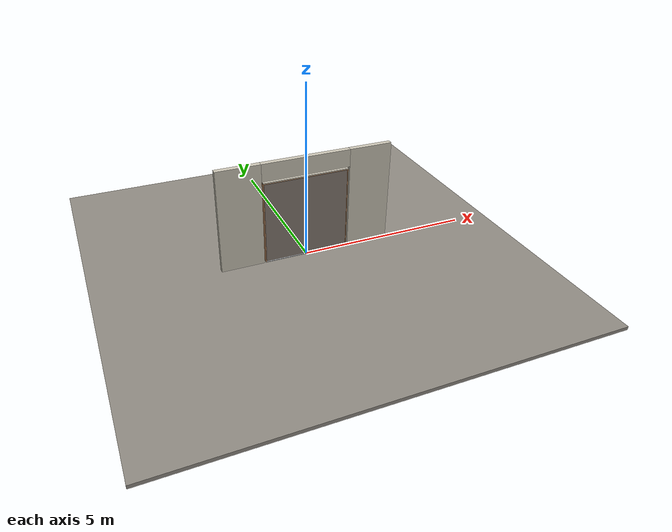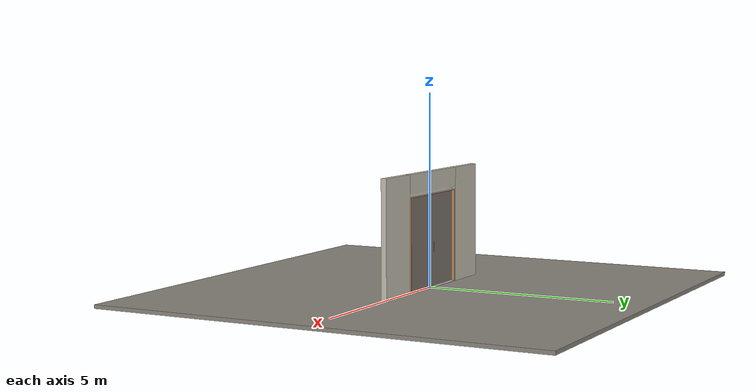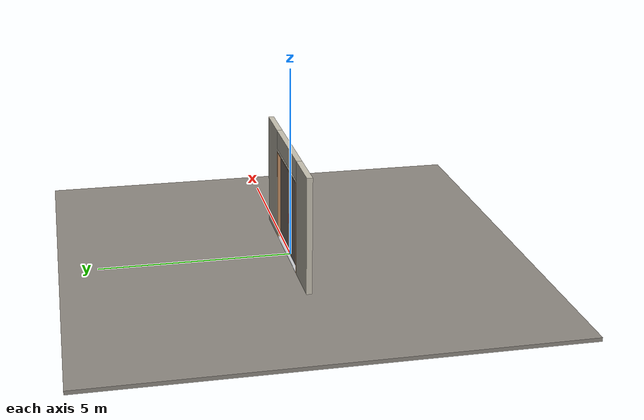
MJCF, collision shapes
<?xml version="1.0" ?>
<mujoco model="db0395_swing_double_minimal">
  <compiler angle="radian" meshdir="../../hardware" texturedir="../../textures" autolimits="true" inertiafromgeom="false"/>
  <option timestep="0.002" integrator="implicitfast" cone="elliptic" impratio="10" noslip_iterations="3">
    <flag multiccd="enable"/>
  </option>
  <size memory="16M"/>
  <default>
    <geom condim="4" solref="0.005 1" solimp="0.95 0.99 0.001"/>
    <joint solreflimit="0.005 1" solimplimit="0.95 0.99 0.001"/>
    <tendon solreflimit="0.005 1"/>
    <equality solref="0.002 1"/>
  </default>
  <visual>
    <headlight ambient="0.4 0.4 0.4" diffuse="0.7 0.7 0.7" specular="0.2 0.2 0.2"/>
    <quality shadowsize="4096"/>
    <map znear="0.01" zfar="60"/>
  </visual>
  <asset>
    <mesh name="pull_2b47e55ff8" file="pull_2b47e55ff8.obj"/>
    <material name="mat_floor" rgba="0.55 0.53 0.5 1" specular="0.2" shininess="0.15" reflectance="0"/>
    <material name="mat_wall" rgba="0.78 0.76 0.7 1" specular="0.2" shininess="0.1" reflectance="0"/>
    <material name="mat_leaf_a" rgba="0.5 0.46 0.425 1" specular="0.2" shininess="0.15" reflectance="0"/>
    <material name="mat_leaf_a_brace" rgba="0.45 0.414 0.383 1" specular="0.2" shininess="0.2" reflectance="0"/>
    <material name="mat_hinge" rgba="0.65 0.66 0.68 1" specular="0.74" shininess="0.5" reflectance="0.36"/>
    <material name="mat_op_black_matte_metal" rgba="0.05 0.05 0.05 1" specular="0.38" shininess="0.3" reflectance="0.12"/>
    <material name="mat_leaf_b" rgba="0.5 0.46 0.425 1" specular="0.2" shininess="0.15" reflectance="0"/>
    <material name="mat_leaf_b_brace" rgba="0.45 0.414 0.383 1" specular="0.2" shininess="0.2" reflectance="0"/>
    <material name="mat_frame" rgba="0.75 0.55 0.38 1" specular="0.2" shininess="0.45" reflectance="0"/>
    <material name="mat_threshold" rgba="0.8 0.81 0.83 1" specular="0.8" shininess="0.6" reflectance="0.4"/>
    <texture name="skybox" type="skybox" builtin="gradient" rgb1="0.6 0.7 0.85" rgb2="0.9 0.92 0.95" width="256" height="256"/>
  </asset>
  <worldbody>
    <light name="sun" pos="1.5 -2.5 4" dir="-0.3 0.5 -0.8" directional="true" diffuse="0.8 0.8 0.8" specular="0.3 0.3 0.3" castshadow="true"/>
    <light name="fill" pos="-1.5 2.5 3" dir="0.3 -0.5 -0.7" directional="true" diffuse="0.35 0.35 0.4" castshadow="false"/>
    <camera name="robot_view" pos="0 -2.856687 2.014912" xyaxes="1 0 0 0 0.26963 0.962964" fovy="52"/>
    <camera name="far_view" pos="0 2.917687 2.014912" xyaxes="-1 0 0 0 -0.26963 0.962964" fovy="52"/>
    <camera name="iso" pos="-2.194262 -2.394737 2.476863" xyaxes="0.741536 -0.670913 0 0.242917 0.268487 0.932151" fovy="46"/>
    <camera name="detail_handle" pos="0.0735 -0.867 1.33" xyaxes="0.97561 0.219512 0 -0.070934 0.315262 0.94635" fovy="38"/>
    <geom name="floor" type="box" size="6 6 0.05" pos="0 0 -0.05" material="mat_floor" group="0" contype="1" conaffinity="1" friction="0.8 0.005 0.0001" density="2400"/>
    <geom name="wall_left" type="box" size="0.61775 0.0725 1.5065" pos="-1.88225 0.0305 1.5065" material="mat_wall" group="0" contype="1" conaffinity="1" friction="0.6 0.005 0.0001" density="800"/>
    <geom name="wall_right" type="box" size="0.61775 0.0725 1.5065" pos="1.88225 0.0305 1.5065" material="mat_wall" group="0" contype="1" conaffinity="1" friction="0.6 0.005 0.0001" density="800"/>
    <geom name="wall_header" type="box" size="1.2645 0.0725 0.255" pos="0 0.0305 2.758" material="mat_wall" group="0" contype="1" conaffinity="1" friction="0.6 0.005 0.0001" density="800"/>
    <geom name="jamb_l" type="box" size="0.0095 0.0725 1.2065" pos="-1.214 0.0305 1.2065" material="mat_frame" group="0" contype="1" conaffinity="1" friction="0.6 0.005 0.0001" density="300"/>
    <geom name="jamb_r" type="box" size="0.0095 0.0725 1.2065" pos="1.214 0.0305 1.2065" material="mat_frame" group="0" contype="1" conaffinity="1" friction="0.6 0.005 0.0001" density="300"/>
    <geom name="jamb_head" type="box" size="1.2235 0.0725 0.0095" pos="0 0.0305 2.4225" material="mat_frame" group="0" contype="1" conaffinity="1" friction="0.6 0.005 0.0001" density="300"/>
    <geom name="head_stud" type="box" size="1.2235 0.0725 0.015" pos="0 0.0305 2.447" material="mat_wall" group="0" contype="1" conaffinity="1" friction="0.6 0.005 0.0001" density="500"/>
    <geom name="threshold" type="box" size="1.2235 0.0725 0.0065" pos="0 0.0305 0.0065" material="mat_threshold" group="0" contype="1" conaffinity="1" friction="0.5 0.005 0.0001" density="2700"/>
    <site name="approach_point" pos="0 -1.5 0" quat="1 0 0 0" size="0.05" rgba="0.2 0.9 0.2 0.5" group="4"/>
    <site name="goal_point" pos="0 1.5 0" quat="1 0 0 0" size="0.05" rgba="0.2 0.9 0.2 0.5" group="4"/>
    <site name="door_plane_center" pos="0 0 1.2065" quat="1 0 0 0" size="0.02" rgba="0.2 0.9 0.2 0.5" group="4"/>
    <site name="approach_point_2" pos="0 -1.5 0" quat="1 0 0 0" size="0.05" rgba="0.2 0.9 0.2 0.5" group="4"/>
    <site name="goal_point_2" pos="0 1.5 0" quat="1 0 0 0" size="0.05" rgba="0.2 0.9 0.2 0.5" group="4"/>
    <site name="door_plane_center_2" pos="0 0 1.2065" quat="1 0 0 0" size="0.02" rgba="0.2 0.9 0.2 0.5" group="4"/>
    <site name="approach_point_3" pos="0 -1.5 0" quat="1 0 0 0" size="0.05" rgba="0.2 0.9 0.2 0.5" group="4"/>
    <site name="goal_point_3" pos="0 1.5 0" quat="1 0 0 0" size="0.05" rgba="0.2 0.9 0.2 0.5" group="4"/>
    <site name="door_plane_center_3" pos="0 0 1.2065" quat="1 0 0 0" size="0.02" rgba="0.2 0.9 0.2 0.5" group="4"/>
    <body name="leaf_a" pos="-1.2045 0 0">
      <inertial pos="0.610914 0 1.210394" mass="62.748227" quat="0.499087 0.499087 -0.500911 0.500911" diaginertia="7.664711247 29.491079626 37.128494655"/>
      <joint name="leaf_a_hinge" type="hinge" axis="0 0 -1" pos="0.003 -0.029 0" limited="true" range="0 1.396263" damping="0.948781" frictionloss="28.985632" armature="0.02"/>
      <geom name="leaf_a_slab" type="box" size="0.6 0.022 1.196" pos="0.603 0 1.213" material="mat_leaf_a" group="0" contype="1" conaffinity="1" friction="0.45 0.005 0.0001" density="1"/>
      <geom name="leaf_a_pull_n" type="mesh" mesh="pull_2b47e55ff8" pos="1.098 -0.022 1.05" quat="0.707107 0.707107 0 0" material="mat_op_black_matte_metal" group="1" contype="0" conaffinity="0" density="3000"/>
      <geom name="leaf_a_pull_col_n" type="capsule" size="0.006 0.13" pos="1.098 -0.067 1.05" material="mat_op_black_matte_metal" group="3" contype="1" conaffinity="1" rgba="0.8 0.3 0.3 0.25" friction="0.7 0.01 0.0001" density="3000"/>
      <geom name="leaf_a_pull_p" type="mesh" mesh="pull_2b47e55ff8" pos="1.098 0.022 1.05" quat="-0.707107 0.707107 0 0" material="mat_op_black_matte_metal" group="1" contype="0" conaffinity="0" density="3000"/>
      <geom name="leaf_a_pull_col_p" type="capsule" size="0.006 0.13" pos="1.098 0.067 1.05" material="mat_op_black_matte_metal" group="3" contype="1" conaffinity="1" rgba="0.8 0.3 0.3 0.25" friction="0.7 0.01 0.0001" density="3000"/>
      <site name="leaf_a_pull_grip_n" pos="1.098 -0.067 1.05" quat="1 0 0 0" size="0.012" rgba="0.2 0.9 0.2 0.5" group="4"/>
      <site name="leaf_a_pull_grip_p" pos="1.098 0.067 1.05" quat="1 0 0 0" size="0.012" rgba="0.2 0.9 0.2 0.5" group="4"/>
      <site name="leaf_a_edge_mid" pos="1.203 0 1.196" quat="1 0 0 0" size="0.02" rgba="0.2 0.9 0.2 0.5" group="4"/>
    </body>
    <body name="leaf_b" pos="1.2045 0 0">
      <inertial pos="-0.603 0 1.213" mass="62.602973" quat="-0.5 0.5 0.5 0.5" diaginertia="7.522456679 29.859531248 37.361788034"/>
      <joint name="leaf_b_hinge" type="hinge" axis="0 0 1" pos="-0.003 -0.029 0" limited="true" range="0 0.001" damping="0.948781" frictionloss="28.985632" armature="0.02"/>
      <geom name="leaf_b_slab" type="box" size="0.6 0.022 1.196" pos="-0.603 0 1.213" material="mat_leaf_b" group="0" contype="1" conaffinity="1" friction="0.45 0.005 0.0001" density="1"/>
      <site name="leaf_b_edge_mid" pos="-1.203 0 1.196" quat="1 0 0 0" size="0.02" rgba="0.2 0.9 0.2 0.5" group="4"/>
    </body>
  </worldbody>
  <sensor>
    <jointpos name="leaf_a_hinge_pos" joint="leaf_a_hinge"/>
    <jointvel name="leaf_a_hinge_vel" joint="leaf_a_hinge"/>
    <jointpos name="leaf_b_hinge_pos" joint="leaf_b_hinge"/>
    <jointvel name="leaf_b_hinge_vel" joint="leaf_b_hinge"/>
  </sensor>
</mujoco>
